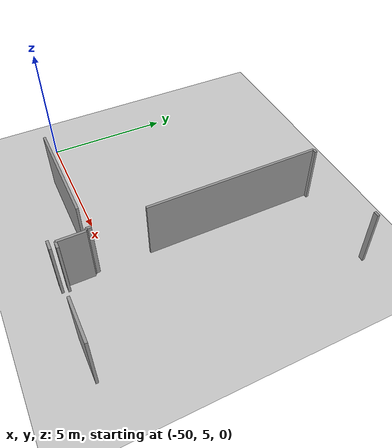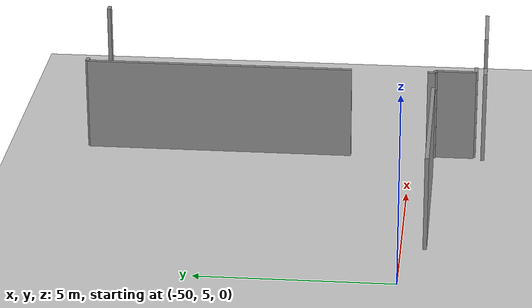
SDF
<sdf version="1.6">
 <world name="default">
  <model name="ground_plane">
   <static>1</static>
   <link name="link">
    <collision name="collision">
     <geometry><plane><normal>0 0 1</normal><size>100 100</size></plane></geometry>
     <surface><friction><ode><mu>100</mu><mu2>50</mu2></ode></friction></surface>
    </collision>
    <visual name="visual">
     <cast_shadows>0</cast_shadows>
     <geometry><plane><normal>0 0 1</normal><size>100 100</size></plane></geometry>
     <material>
      <script><uri>file://media/materials/scripts/gazebo.material</uri><name>Gazebo/Grey</name></script>
     </material>
    </visual>
   </link>
  </model>
  <model name="50056457">
   <static>1</static>
   <link name="Wall_0">
    <collision name="Wall_0_Collision">
     <geometry><box><size>4.36631290074 0.1 2.5</size></box></geometry>
     <pose>2.18315645037 0 1.25 0 0 0</pose>
    </collision>
    <visual name="Wall_0_Visual">
     <pose>2.18315645037 0 1.25 0 0 0</pose>
     <geometry><box><size>4.36631290074 0.1 2.5</size></box></geometry>
     <material>
      <script><uri>file://media/materials/scripts/gazebo.material</uri><name>Gazebo/Grey</name></script>
      <ambient>1 1 1 1</ambient>
     </material>
    </visual>
    <pose>11.0454587805 -10.6294097219 0 0 0 3.14159265359</pose>
   </link>
   <link name="Wall_40">
    <collision name="Wall_40_Collision">
     <geometry><box><size>0.40893421309 0.1 2.5</size></box></geometry>
     <pose>0.204467106545 0 1.25 0 0 0</pose>
    </collision>
    <visual name="Wall_40_Visual">
     <pose>0.204467106545 0 1.25 0 0 0</pose>
     <geometry><box><size>0.40893421309 0.1 2.5</size></box></geometry>
     <material>
      <script><uri>file://media/materials/scripts/gazebo.material</uri><name>Gazebo/Grey</name></script>
      <ambient>1 1 1 1</ambient>
     </material>
    </visual>
    <pose>11.9983398694 -11.9712356962 0 0 0 0.0</pose>
   </link>
   <link name="Wall_41">
    <collision name="Wall_41_Collision">
     <geometry><box><size>1.74923557762 0.1 2.5</size></box></geometry>
     <pose>0.874617788808 0 1.25 0 0 0</pose>
    </collision>
    <visual name="Wall_41_Visual">
     <pose>0.874617788808 0 1.25 0 0 0</pose>
     <geometry><box><size>1.74923557762 0.1 2.5</size></box></geometry>
     <material>
      <script><uri>file://media/materials/scripts/gazebo.material</uri><name>Gazebo/Grey</name></script>
      <ambient>1 1 1 1</ambient>
     </material>
    </visual>
    <pose>14.4256879801 -11.9712356962 0 0 0 0.0</pose>
   </link>
   <link name="Wall_54">
    <collision name="Wall_54_Collision">
     <geometry><box><size>0.305768953864 0.1 2.5</size></box></geometry>
     <pose>0.152884476932 0 1.25 0 0 0</pose>
    </collision>
    <visual name="Wall_54_Visual">
     <pose>0.152884476932 0 1.25 0 0 0</pose>
     <geometry><box><size>0.305768953864 0.1 2.5</size></box></geometry>
     <material>
      <script><uri>file://media/materials/scripts/gazebo.material</uri><name>Gazebo/Grey</name></script>
      <ambient>1 1 1 1</ambient>
     </material>
    </visual>
    <pose>12.4562309953 -11.7291615493 0 0 0 3.14159265359</pose>
   </link>
   <link name="Wall_55">
    <collision name="Wall_55_Collision">
     <geometry><box><size>1.07366406071 0.1 2.5</size></box></geometry>
     <pose>0.536832030357 0 1.25 0 0 0</pose>
    </collision>
    <visual name="Wall_55_Visual">
     <pose>0.536832030357 0 1.25 0 0 0</pose>
     <geometry><box><size>1.07366406071 0.1 2.5</size></box></geometry>
     <material>
      <script><uri>file://media/materials/scripts/gazebo.material</uri><name>Gazebo/Grey</name></script>
      <ambient>1 1 1 1</ambient>
     </material>
    </visual>
    <pose>12.1504620415 -11.7291615493 0 0 0 1.57079632679</pose>
   </link>
   <link name="Wall_56">
    <collision name="Wall_56_Collision">
     <geometry><box><size>0.101810050566 0.1 2.5</size></box></geometry>
     <pose>0.0509050252831 0 1.25 0 0 0</pose>
    </collision>
    <visual name="Wall_56_Visual">
     <pose>0.0509050252831 0 1.25 0 0 0</pose>
     <geometry><box><size>0.101810050566 0.1 2.5</size></box></geometry>
     <material>
      <script><uri>file://media/materials/scripts/gazebo.material</uri><name>Gazebo/Grey</name></script>
      <ambient>1 1 1 1</ambient>
     </material>
    </visual>
    <pose>12.1504620415 -10.6554974886 0 0 0 3.14159265359</pose>
   </link>
   <link name="Wall_57">
    <collision name="Wall_57_Collision">
     <geometry><box><size>0.203789502215 0.1 2.5</size></box></geometry>
     <pose>0.101894751107 0 1.25 0 0 0</pose>
    </collision>
    <visual name="Wall_57_Visual">
     <pose>0.101894751107 0 1.25 0 0 0</pose>
     <geometry><box><size>0.203789502215 0.1 2.5</size></box></geometry>
     <material>
      <script><uri>file://media/materials/scripts/gazebo.material</uri><name>Gazebo/Grey</name></script>
      <ambient>1 1 1 1</ambient>
     </material>
    </visual>
    <pose>12.0486519909 -10.6554974886 0 0 0 1.57079632679</pose>
   </link>
   <link name="Wall_58">
    <collision name="Wall_58_Collision">
     <geometry><box><size>7.08435326902 0.1 2.5</size></box></geometry>
     <pose>3.54217663451 0 1.25 0 0 0</pose>
    </collision>
    <visual name="Wall_58_Visual">
     <pose>3.54217663451 0 1.25 0 0 0</pose>
     <geometry><box><size>7.08435326902 0.1 2.5</size></box></geometry>
     <material>
      <script><uri>file://media/materials/scripts/gazebo.material</uri><name>Gazebo/Grey</name></script>
      <ambient>1 1 1 1</ambient>
     </material>
    </visual>
    <pose>12.0486519909 -8.43871492339 0 0 0 1.57079632679</pose>
   </link>
   <link name="Wall_59">
    <collision name="Wall_59_Collision">
     <geometry><box><size>0.181767361493 0.1 2.5</size></box></geometry>
     <pose>0.0908836807467 0 1.25 0 0 0</pose>
    </collision>
    <visual name="Wall_59_Visual">
     <pose>0.0908836807467 0 1.25 0 0 0</pose>
     <geometry><box><size>0.181767361493 0.1 2.5</size></box></geometry>
     <material>
      <script><uri>file://media/materials/scripts/gazebo.material</uri><name>Gazebo/Grey</name></script>
      <ambient>1 1 1 1</ambient>
     </material>
    </visual>
    <pose>12.0486519909 -1.35436165437 0 0 0 0.0</pose>
   </link>
   <link name="Wall_60">
    <collision name="Wall_60_Collision">
     <geometry><box><size>0.211920754174 0.1 2.5</size></box></geometry>
     <pose>0.105960377087 0 1.25 0 0 0</pose>
    </collision>
    <visual name="Wall_60_Visual">
     <pose>0.105960377087 0 1.25 0 0 0</pose>
     <geometry><box><size>0.211920754174 0.1 2.5</size></box></geometry>
     <material>
      <script><uri>file://media/materials/scripts/gazebo.material</uri><name>Gazebo/Grey</name></script>
      <ambient>1 1 1 1</ambient>
     </material>
    </visual>
    <pose>15.7553170765 -1.35436165437 0 0 0 0.0</pose>
   </link>
   <pose>-54.8 15.0363365322 0 0 0 0</pose>
  </model>
 </world>
</sdf>
